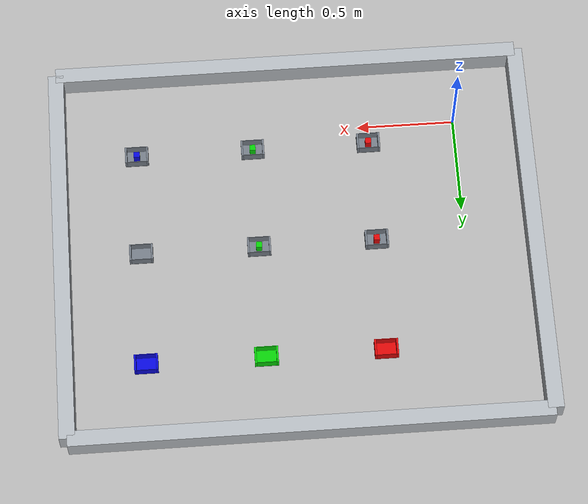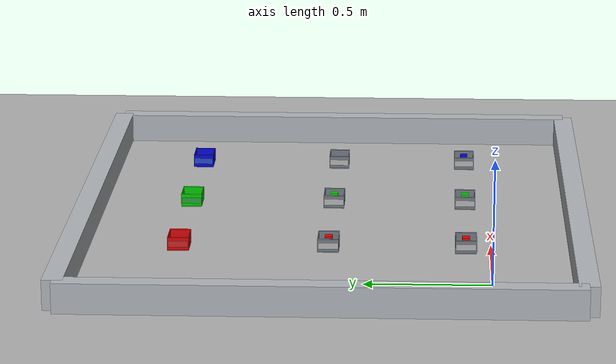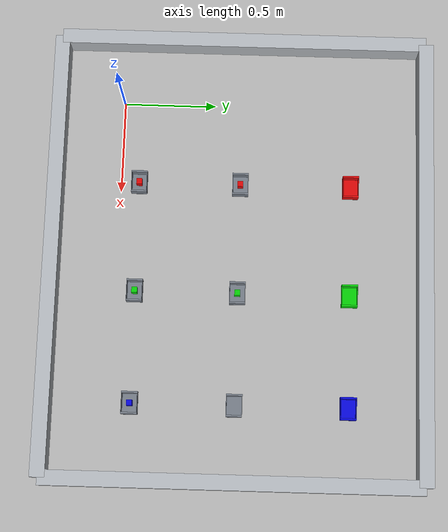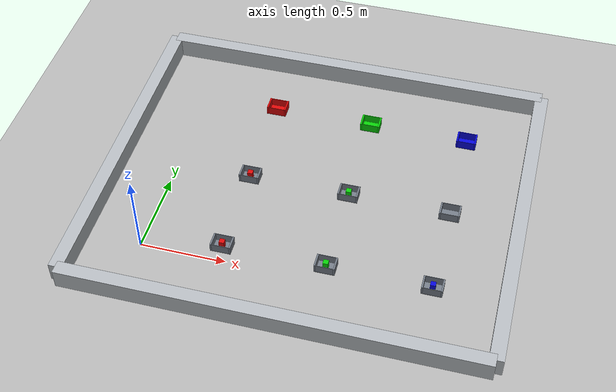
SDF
<?xml version='1.0' encoding='utf-8'?>
<sdf version="1.6">
  <world name="warehouse">
    <plugin name="state" filename="libgazebo_ros_state.so">
      <ros>
        <namespace>/gazebo</namespace>
      </ros>
      <update_rate>20</update_rate>
    </plugin>
    <gui>
      <camera name="user_camera">
        <pose>-.5 -1.8 3.3 0 .95 .95</pose>
        <view_controller>orbit</view_controller>
      </camera>
    </gui>
    <physics type="ode" name="physics">
      <max_step_size>0.001</max_step_size>
      <real_time_update_rate>1000</real_time_update_rate>
    </physics>
    <light name="sun" type="directional">
      <pose>0 0 10 0 0 0</pose>
      <diffuse>0.8 0.8 0.8 1</diffuse>
      <direction>-0.5 0.1 -0.9</direction>
    </light>
    <model name="ground">
      <static>true</static>
      <link name="ground">
        <collision name="ground">
          <geometry>
            <plane>
              <normal>0 0 1</normal>
              <size>20 20</size>
            </plane>
          </geometry>
        </collision>
        <visual name="ground">
          <geometry>
            <plane>
              <normal>0 0 1</normal>
              <size>20 20</size>
            </plane>
          </geometry>
          <material>
            <ambient>0.7 0.7 0.7 1</ambient>
          </material>
        </visual>
      </link>
    </model>
    <model name="A1">
      <static>true</static>
      <link name="frame">
        <collision name="A1_support">
          <pose>0.45 0.1 0.001900000000000001 0 0 0</pose>
          <geometry>
            <box>
              <size>0.119 0.0857 0.003799999999999998</size>
            </box>
          </geometry>
        </collision>
        <visual name="A1_support">
          <pose>0.45 0.1 0.001900000000000001 0 0 0</pose>
          <geometry>
            <box>
              <size>0.119 0.0857 0.003799999999999998</size>
            </box>
          </geometry>
          <material>
            <ambient>0.225 0.24 0.26 1</ambient>
            <diffuse>0.45 0.48 0.52 1</diffuse>
            <specular>0 0 0 1</specular>
          </material>
        </visual>
        <collision name="A1_end_-1">
          <pose>0.39525 0.1 0.028800000000000003 0 0 0</pose>
          <geometry>
            <box>
              <size>0.009499999999999995 0.0857 0.05</size>
            </box>
          </geometry>
        </collision>
        <visual name="A1_end_-1">
          <pose>0.39525 0.1 0.028800000000000003 0 0 0</pose>
          <geometry>
            <box>
              <size>0.009499999999999995 0.0857 0.05</size>
            </box>
          </geometry>
          <material>
            <ambient>0.225 0.24 0.26 1</ambient>
            <diffuse>0.45 0.48 0.52 1</diffuse>
            <specular>0 0 0 1</specular>
          </material>
        </visual>
        <collision name="A1_side_-1">
          <pose>0.45 0.058575 0.028800000000000003 0 0 0</pose>
          <geometry>
            <box>
              <size>0.1 0.0028499999999999984 0.05</size>
            </box>
          </geometry>
        </collision>
        <visual name="A1_side_-1">
          <pose>0.45 0.058575 0.028800000000000003 0 0 0</pose>
          <geometry>
            <box>
              <size>0.1 0.0028499999999999984 0.05</size>
            </box>
          </geometry>
          <material>
            <ambient>0.225 0.24 0.26 1</ambient>
            <diffuse>0.45 0.48 0.52 1</diffuse>
            <specular>0 0 0 1</specular>
          </material>
        </visual>
        <collision name="A1_end_1">
          <pose>0.50475 0.1 0.028800000000000003 0 0 0</pose>
          <geometry>
            <box>
              <size>0.009499999999999995 0.0857 0.05</size>
            </box>
          </geometry>
        </collision>
        <visual name="A1_end_1">
          <pose>0.50475 0.1 0.028800000000000003 0 0 0</pose>
          <geometry>
            <box>
              <size>0.009499999999999995 0.0857 0.05</size>
            </box>
          </geometry>
          <material>
            <ambient>0.225 0.24 0.26 1</ambient>
            <diffuse>0.45 0.48 0.52 1</diffuse>
            <specular>0 0 0 1</specular>
          </material>
        </visual>
        <collision name="A1_side_1">
          <pose>0.45 0.14142500000000002 0.028800000000000003 0 0 0</pose>
          <geometry>
            <box>
              <size>0.1 0.0028499999999999984 0.05</size>
            </box>
          </geometry>
        </collision>
        <visual name="A1_side_1">
          <pose>0.45 0.14142500000000002 0.028800000000000003 0 0 0</pose>
          <geometry>
            <box>
              <size>0.1 0.0028499999999999984 0.05</size>
            </box>
          </geometry>
          <material>
            <ambient>0.225 0.24 0.26 1</ambient>
            <diffuse>0.45 0.48 0.52 1</diffuse>
            <specular>0 0 0 1</specular>
          </material>
        </visual>
        <visual name="A1_label">
          <pose>0.3904 0.1 0.0269 1.5707963267948966 0 -1.5707963267948966</pose>
          <geometry>
            <plane>
              <normal>0 0 1</normal>
              <size>.08 .025</size>
            </plane>
          </geometry>
          <material>
            <script>
              <uri>file://media/materials/scripts</uri>
              <uri>file://media/materials/textures</uri>
              <name>Warehouse/A1</name>
            </script>
          </material>
        </visual>
      </link>
    </model>
    <model name="A2">
      <static>true</static>
      <link name="frame">
        <collision name="A2_support">
          <pose>1.05 0.1 0.001900000000000001 0 0 0</pose>
          <geometry>
            <box>
              <size>0.119 0.0857 0.003799999999999998</size>
            </box>
          </geometry>
        </collision>
        <visual name="A2_support">
          <pose>1.05 0.1 0.001900000000000001 0 0 0</pose>
          <geometry>
            <box>
              <size>0.119 0.0857 0.003799999999999998</size>
            </box>
          </geometry>
          <material>
            <ambient>0.225 0.24 0.26 1</ambient>
            <diffuse>0.45 0.48 0.52 1</diffuse>
            <specular>0 0 0 1</specular>
          </material>
        </visual>
        <collision name="A2_end_-1">
          <pose>0.9952500000000001 0.1 0.028800000000000003 0 0 0</pose>
          <geometry>
            <box>
              <size>0.009499999999999995 0.0857 0.05</size>
            </box>
          </geometry>
        </collision>
        <visual name="A2_end_-1">
          <pose>0.9952500000000001 0.1 0.028800000000000003 0 0 0</pose>
          <geometry>
            <box>
              <size>0.009499999999999995 0.0857 0.05</size>
            </box>
          </geometry>
          <material>
            <ambient>0.225 0.24 0.26 1</ambient>
            <diffuse>0.45 0.48 0.52 1</diffuse>
            <specular>0 0 0 1</specular>
          </material>
        </visual>
        <collision name="A2_side_-1">
          <pose>1.05 0.058575 0.028800000000000003 0 0 0</pose>
          <geometry>
            <box>
              <size>0.1 0.0028499999999999984 0.05</size>
            </box>
          </geometry>
        </collision>
        <visual name="A2_side_-1">
          <pose>1.05 0.058575 0.028800000000000003 0 0 0</pose>
          <geometry>
            <box>
              <size>0.1 0.0028499999999999984 0.05</size>
            </box>
          </geometry>
          <material>
            <ambient>0.225 0.24 0.26 1</ambient>
            <diffuse>0.45 0.48 0.52 1</diffuse>
            <specular>0 0 0 1</specular>
          </material>
        </visual>
        <collision name="A2_end_1">
          <pose>1.1047500000000001 0.1 0.028800000000000003 0 0 0</pose>
          <geometry>
            <box>
              <size>0.009499999999999995 0.0857 0.05</size>
            </box>
          </geometry>
        </collision>
        <visual name="A2_end_1">
          <pose>1.1047500000000001 0.1 0.028800000000000003 0 0 0</pose>
          <geometry>
            <box>
              <size>0.009499999999999995 0.0857 0.05</size>
            </box>
          </geometry>
          <material>
            <ambient>0.225 0.24 0.26 1</ambient>
            <diffuse>0.45 0.48 0.52 1</diffuse>
            <specular>0 0 0 1</specular>
          </material>
        </visual>
        <collision name="A2_side_1">
          <pose>1.05 0.14142500000000002 0.028800000000000003 0 0 0</pose>
          <geometry>
            <box>
              <size>0.1 0.0028499999999999984 0.05</size>
            </box>
          </geometry>
        </collision>
        <visual name="A2_side_1">
          <pose>1.05 0.14142500000000002 0.028800000000000003 0 0 0</pose>
          <geometry>
            <box>
              <size>0.1 0.0028499999999999984 0.05</size>
            </box>
          </geometry>
          <material>
            <ambient>0.225 0.24 0.26 1</ambient>
            <diffuse>0.45 0.48 0.52 1</diffuse>
            <specular>0 0 0 1</specular>
          </material>
        </visual>
        <visual name="A2_label">
          <pose>0.9904000000000001 0.1 0.0269 1.5707963267948966 0 -1.5707963267948966</pose>
          <geometry>
            <plane>
              <normal>0 0 1</normal>
              <size>.08 .025</size>
            </plane>
          </geometry>
          <material>
            <script>
              <uri>file://media/materials/scripts</uri>
              <uri>file://media/materials/textures</uri>
              <name>Warehouse/A2</name>
            </script>
          </material>
        </visual>
      </link>
    </model>
    <model name="A3">
      <static>true</static>
      <link name="frame">
        <collision name="A3_support">
          <pose>1.65 0.1 0.001900000000000001 0 0 0</pose>
          <geometry>
            <box>
              <size>0.119 0.0857 0.003799999999999998</size>
            </box>
          </geometry>
        </collision>
        <visual name="A3_support">
          <pose>1.65 0.1 0.001900000000000001 0 0 0</pose>
          <geometry>
            <box>
              <size>0.119 0.0857 0.003799999999999998</size>
            </box>
          </geometry>
          <material>
            <ambient>0.225 0.24 0.26 1</ambient>
            <diffuse>0.45 0.48 0.52 1</diffuse>
            <specular>0 0 0 1</specular>
          </material>
        </visual>
        <collision name="A3_end_-1">
          <pose>1.5952499999999998 0.1 0.028800000000000003 0 0 0</pose>
          <geometry>
            <box>
              <size>0.009499999999999995 0.0857 0.05</size>
            </box>
          </geometry>
        </collision>
        <visual name="A3_end_-1">
          <pose>1.5952499999999998 0.1 0.028800000000000003 0 0 0</pose>
          <geometry>
            <box>
              <size>0.009499999999999995 0.0857 0.05</size>
            </box>
          </geometry>
          <material>
            <ambient>0.225 0.24 0.26 1</ambient>
            <diffuse>0.45 0.48 0.52 1</diffuse>
            <specular>0 0 0 1</specular>
          </material>
        </visual>
        <collision name="A3_side_-1">
          <pose>1.65 0.058575 0.028800000000000003 0 0 0</pose>
          <geometry>
            <box>
              <size>0.1 0.0028499999999999984 0.05</size>
            </box>
          </geometry>
        </collision>
        <visual name="A3_side_-1">
          <pose>1.65 0.058575 0.028800000000000003 0 0 0</pose>
          <geometry>
            <box>
              <size>0.1 0.0028499999999999984 0.05</size>
            </box>
          </geometry>
          <material>
            <ambient>0.225 0.24 0.26 1</ambient>
            <diffuse>0.45 0.48 0.52 1</diffuse>
            <specular>0 0 0 1</specular>
          </material>
        </visual>
        <collision name="A3_end_1">
          <pose>1.70475 0.1 0.028800000000000003 0 0 0</pose>
          <geometry>
            <box>
              <size>0.009499999999999995 0.0857 0.05</size>
            </box>
          </geometry>
        </collision>
        <visual name="A3_end_1">
          <pose>1.70475 0.1 0.028800000000000003 0 0 0</pose>
          <geometry>
            <box>
              <size>0.009499999999999995 0.0857 0.05</size>
            </box>
          </geometry>
          <material>
            <ambient>0.225 0.24 0.26 1</ambient>
            <diffuse>0.45 0.48 0.52 1</diffuse>
            <specular>0 0 0 1</specular>
          </material>
        </visual>
        <collision name="A3_side_1">
          <pose>1.65 0.14142500000000002 0.028800000000000003 0 0 0</pose>
          <geometry>
            <box>
              <size>0.1 0.0028499999999999984 0.05</size>
            </box>
          </geometry>
        </collision>
        <visual name="A3_side_1">
          <pose>1.65 0.14142500000000002 0.028800000000000003 0 0 0</pose>
          <geometry>
            <box>
              <size>0.1 0.0028499999999999984 0.05</size>
            </box>
          </geometry>
          <material>
            <ambient>0.225 0.24 0.26 1</ambient>
            <diffuse>0.45 0.48 0.52 1</diffuse>
            <specular>0 0 0 1</specular>
          </material>
        </visual>
        <visual name="A3_label">
          <pose>1.5904 0.1 0.0269 1.5707963267948966 0 -1.5707963267948966</pose>
          <geometry>
            <plane>
              <normal>0 0 1</normal>
              <size>.08 .025</size>
            </plane>
          </geometry>
          <material>
            <script>
              <uri>file://media/materials/scripts</uri>
              <uri>file://media/materials/textures</uri>
              <name>Warehouse/A3</name>
            </script>
          </material>
        </visual>
      </link>
    </model>
    <model name="B1">
      <static>true</static>
      <link name="frame">
        <collision name="B1_support">
          <pose>0.45 0.65 0.001900000000000001 0 0 0</pose>
          <geometry>
            <box>
              <size>0.119 0.0857 0.003799999999999998</size>
            </box>
          </geometry>
        </collision>
        <visual name="B1_support">
          <pose>0.45 0.65 0.001900000000000001 0 0 0</pose>
          <geometry>
            <box>
              <size>0.119 0.0857 0.003799999999999998</size>
            </box>
          </geometry>
          <material>
            <ambient>0.225 0.24 0.26 1</ambient>
            <diffuse>0.45 0.48 0.52 1</diffuse>
            <specular>0 0 0 1</specular>
          </material>
        </visual>
        <collision name="B1_end_-1">
          <pose>0.39525 0.65 0.028800000000000003 0 0 0</pose>
          <geometry>
            <box>
              <size>0.009499999999999995 0.0857 0.05</size>
            </box>
          </geometry>
        </collision>
        <visual name="B1_end_-1">
          <pose>0.39525 0.65 0.028800000000000003 0 0 0</pose>
          <geometry>
            <box>
              <size>0.009499999999999995 0.0857 0.05</size>
            </box>
          </geometry>
          <material>
            <ambient>0.225 0.24 0.26 1</ambient>
            <diffuse>0.45 0.48 0.52 1</diffuse>
            <specular>0 0 0 1</specular>
          </material>
        </visual>
        <collision name="B1_side_-1">
          <pose>0.45 0.608575 0.028800000000000003 0 0 0</pose>
          <geometry>
            <box>
              <size>0.1 0.0028499999999999984 0.05</size>
            </box>
          </geometry>
        </collision>
        <visual name="B1_side_-1">
          <pose>0.45 0.608575 0.028800000000000003 0 0 0</pose>
          <geometry>
            <box>
              <size>0.1 0.0028499999999999984 0.05</size>
            </box>
          </geometry>
          <material>
            <ambient>0.225 0.24 0.26 1</ambient>
            <diffuse>0.45 0.48 0.52 1</diffuse>
            <specular>0 0 0 1</specular>
          </material>
        </visual>
        <collision name="B1_end_1">
          <pose>0.50475 0.65 0.028800000000000003 0 0 0</pose>
          <geometry>
            <box>
              <size>0.009499999999999995 0.0857 0.05</size>
            </box>
          </geometry>
        </collision>
        <visual name="B1_end_1">
          <pose>0.50475 0.65 0.028800000000000003 0 0 0</pose>
          <geometry>
            <box>
              <size>0.009499999999999995 0.0857 0.05</size>
            </box>
          </geometry>
          <material>
            <ambient>0.225 0.24 0.26 1</ambient>
            <diffuse>0.45 0.48 0.52 1</diffuse>
            <specular>0 0 0 1</specular>
          </material>
        </visual>
        <collision name="B1_side_1">
          <pose>0.45 0.6914250000000001 0.028800000000000003 0 0 0</pose>
          <geometry>
            <box>
              <size>0.1 0.0028499999999999984 0.05</size>
            </box>
          </geometry>
        </collision>
        <visual name="B1_side_1">
          <pose>0.45 0.6914250000000001 0.028800000000000003 0 0 0</pose>
          <geometry>
            <box>
              <size>0.1 0.0028499999999999984 0.05</size>
            </box>
          </geometry>
          <material>
            <ambient>0.225 0.24 0.26 1</ambient>
            <diffuse>0.45 0.48 0.52 1</diffuse>
            <specular>0 0 0 1</specular>
          </material>
        </visual>
        <visual name="B1_label">
          <pose>0.3904 0.65 0.0269 1.5707963267948966 0 -1.5707963267948966</pose>
          <geometry>
            <plane>
              <normal>0 0 1</normal>
              <size>.08 .025</size>
            </plane>
          </geometry>
          <material>
            <script>
              <uri>file://media/materials/scripts</uri>
              <uri>file://media/materials/textures</uri>
              <name>Warehouse/B1</name>
            </script>
          </material>
        </visual>
      </link>
    </model>
    <model name="B2">
      <static>true</static>
      <link name="frame">
        <collision name="B2_support">
          <pose>1.05 0.65 0.001900000000000001 0 0 0</pose>
          <geometry>
            <box>
              <size>0.119 0.0857 0.003799999999999998</size>
            </box>
          </geometry>
        </collision>
        <visual name="B2_support">
          <pose>1.05 0.65 0.001900000000000001 0 0 0</pose>
          <geometry>
            <box>
              <size>0.119 0.0857 0.003799999999999998</size>
            </box>
          </geometry>
          <material>
            <ambient>0.225 0.24 0.26 1</ambient>
            <diffuse>0.45 0.48 0.52 1</diffuse>
            <specular>0 0 0 1</specular>
          </material>
        </visual>
        <collision name="B2_end_-1">
          <pose>0.9952500000000001 0.65 0.028800000000000003 0 0 0</pose>
          <geometry>
            <box>
              <size>0.009499999999999995 0.0857 0.05</size>
            </box>
          </geometry>
        </collision>
        <visual name="B2_end_-1">
          <pose>0.9952500000000001 0.65 0.028800000000000003 0 0 0</pose>
          <geometry>
            <box>
              <size>0.009499999999999995 0.0857 0.05</size>
            </box>
          </geometry>
          <material>
            <ambient>0.225 0.24 0.26 1</ambient>
            <diffuse>0.45 0.48 0.52 1</diffuse>
            <specular>0 0 0 1</specular>
          </material>
        </visual>
        <collision name="B2_side_-1">
          <pose>1.05 0.608575 0.028800000000000003 0 0 0</pose>
          <geometry>
            <box>
              <size>0.1 0.0028499999999999984 0.05</size>
            </box>
          </geometry>
        </collision>
        <visual name="B2_side_-1">
          <pose>1.05 0.608575 0.028800000000000003 0 0 0</pose>
          <geometry>
            <box>
              <size>0.1 0.0028499999999999984 0.05</size>
            </box>
          </geometry>
          <material>
            <ambient>0.225 0.24 0.26 1</ambient>
            <diffuse>0.45 0.48 0.52 1</diffuse>
            <specular>0 0 0 1</specular>
          </material>
        </visual>
        <collision name="B2_end_1">
          <pose>1.1047500000000001 0.65 0.028800000000000003 0 0 0</pose>
          <geometry>
            <box>
              <size>0.009499999999999995 0.0857 0.05</size>
            </box>
          </geometry>
        </collision>
        <visual name="B2_end_1">
          <pose>1.1047500000000001 0.65 0.028800000000000003 0 0 0</pose>
          <geometry>
            <box>
              <size>0.009499999999999995 0.0857 0.05</size>
            </box>
          </geometry>
          <material>
            <ambient>0.225 0.24 0.26 1</ambient>
            <diffuse>0.45 0.48 0.52 1</diffuse>
            <specular>0 0 0 1</specular>
          </material>
        </visual>
        <collision name="B2_side_1">
          <pose>1.05 0.6914250000000001 0.028800000000000003 0 0 0</pose>
          <geometry>
            <box>
              <size>0.1 0.0028499999999999984 0.05</size>
            </box>
          </geometry>
        </collision>
        <visual name="B2_side_1">
          <pose>1.05 0.6914250000000001 0.028800000000000003 0 0 0</pose>
          <geometry>
            <box>
              <size>0.1 0.0028499999999999984 0.05</size>
            </box>
          </geometry>
          <material>
            <ambient>0.225 0.24 0.26 1</ambient>
            <diffuse>0.45 0.48 0.52 1</diffuse>
            <specular>0 0 0 1</specular>
          </material>
        </visual>
        <visual name="B2_label">
          <pose>0.9904000000000001 0.65 0.0269 1.5707963267948966 0 -1.5707963267948966</pose>
          <geometry>
            <plane>
              <normal>0 0 1</normal>
              <size>.08 .025</size>
            </plane>
          </geometry>
          <material>
            <script>
              <uri>file://media/materials/scripts</uri>
              <uri>file://media/materials/textures</uri>
              <name>Warehouse/B2</name>
            </script>
          </material>
        </visual>
      </link>
    </model>
    <model name="B3">
      <static>true</static>
      <link name="frame">
        <collision name="B3_support">
          <pose>1.65 0.65 0.001900000000000001 0 0 0</pose>
          <geometry>
            <box>
              <size>0.119 0.0857 0.003799999999999998</size>
            </box>
          </geometry>
        </collision>
        <visual name="B3_support">
          <pose>1.65 0.65 0.001900000000000001 0 0 0</pose>
          <geometry>
            <box>
              <size>0.119 0.0857 0.003799999999999998</size>
            </box>
          </geometry>
          <material>
            <ambient>0.225 0.24 0.26 1</ambient>
            <diffuse>0.45 0.48 0.52 1</diffuse>
            <specular>0 0 0 1</specular>
          </material>
        </visual>
        <collision name="B3_end_-1">
          <pose>1.5952499999999998 0.65 0.028800000000000003 0 0 0</pose>
          <geometry>
            <box>
              <size>0.009499999999999995 0.0857 0.05</size>
            </box>
          </geometry>
        </collision>
        <visual name="B3_end_-1">
          <pose>1.5952499999999998 0.65 0.028800000000000003 0 0 0</pose>
          <geometry>
            <box>
              <size>0.009499999999999995 0.0857 0.05</size>
            </box>
          </geometry>
          <material>
            <ambient>0.225 0.24 0.26 1</ambient>
            <diffuse>0.45 0.48 0.52 1</diffuse>
            <specular>0 0 0 1</specular>
          </material>
        </visual>
        <collision name="B3_side_-1">
          <pose>1.65 0.608575 0.028800000000000003 0 0 0</pose>
          <geometry>
            <box>
              <size>0.1 0.0028499999999999984 0.05</size>
            </box>
          </geometry>
        </collision>
        <visual name="B3_side_-1">
          <pose>1.65 0.608575 0.028800000000000003 0 0 0</pose>
          <geometry>
            <box>
              <size>0.1 0.0028499999999999984 0.05</size>
            </box>
          </geometry>
          <material>
            <ambient>0.225 0.24 0.26 1</ambient>
            <diffuse>0.45 0.48 0.52 1</diffuse>
            <specular>0 0 0 1</specular>
          </material>
        </visual>
        <collision name="B3_end_1">
          <pose>1.70475 0.65 0.028800000000000003 0 0 0</pose>
          <geometry>
            <box>
              <size>0.009499999999999995 0.0857 0.05</size>
            </box>
          </geometry>
        </collision>
        <visual name="B3_end_1">
          <pose>1.70475 0.65 0.028800000000000003 0 0 0</pose>
          <geometry>
            <box>
              <size>0.009499999999999995 0.0857 0.05</size>
            </box>
          </geometry>
          <material>
            <ambient>0.225 0.24 0.26 1</ambient>
            <diffuse>0.45 0.48 0.52 1</diffuse>
            <specular>0 0 0 1</specular>
          </material>
        </visual>
        <collision name="B3_side_1">
          <pose>1.65 0.6914250000000001 0.028800000000000003 0 0 0</pose>
          <geometry>
            <box>
              <size>0.1 0.0028499999999999984 0.05</size>
            </box>
          </geometry>
        </collision>
        <visual name="B3_side_1">
          <pose>1.65 0.6914250000000001 0.028800000000000003 0 0 0</pose>
          <geometry>
            <box>
              <size>0.1 0.0028499999999999984 0.05</size>
            </box>
          </geometry>
          <material>
            <ambient>0.225 0.24 0.26 1</ambient>
            <diffuse>0.45 0.48 0.52 1</diffuse>
            <specular>0 0 0 1</specular>
          </material>
        </visual>
        <visual name="B3_label">
          <pose>1.5904 0.65 0.0269 1.5707963267948966 0 -1.5707963267948966</pose>
          <geometry>
            <plane>
              <normal>0 0 1</normal>
              <size>.08 .025</size>
            </plane>
          </geometry>
          <material>
            <script>
              <uri>file://media/materials/scripts</uri>
              <uri>file://media/materials/textures</uri>
              <name>Warehouse/B3</name>
            </script>
          </material>
        </visual>
      </link>
    </model>
    <model name="OUT_RED">
      <static>true</static>
      <link name="frame">
        <collision name="OUT_RED_support">
          <pose>0.45 1.25 0.001900000000000001 0 0 0</pose>
          <geometry>
            <box>
              <size>0.119 0.0857 0.003799999999999998</size>
            </box>
          </geometry>
        </collision>
        <visual name="OUT_RED_support">
          <pose>0.45 1.25 0.001900000000000001 0 0 0</pose>
          <geometry>
            <box>
              <size>0.119 0.0857 0.003799999999999998</size>
            </box>
          </geometry>
          <material>
            <ambient>0.425 0.0125 0.0125 1</ambient>
            <diffuse>0.85 0.025 0.025 1</diffuse>
            <specular>0 0 0 1</specular>
          </material>
        </visual>
        <collision name="OUT_RED_end_-1">
          <pose>0.39525 1.25 0.028800000000000003 0 0 0</pose>
          <geometry>
            <box>
              <size>0.009499999999999995 0.0857 0.05</size>
            </box>
          </geometry>
        </collision>
        <visual name="OUT_RED_end_-1">
          <pose>0.39525 1.25 0.028800000000000003 0 0 0</pose>
          <geometry>
            <box>
              <size>0.009499999999999995 0.0857 0.05</size>
            </box>
          </geometry>
          <material>
            <ambient>0.425 0.0125 0.0125 1</ambient>
            <diffuse>0.85 0.025 0.025 1</diffuse>
            <specular>0 0 0 1</specular>
          </material>
        </visual>
        <collision name="OUT_RED_side_-1">
          <pose>0.45 1.208575 0.028800000000000003 0 0 0</pose>
          <geometry>
            <box>
              <size>0.1 0.0028499999999999984 0.05</size>
            </box>
          </geometry>
        </collision>
        <visual name="OUT_RED_side_-1">
          <pose>0.45 1.208575 0.028800000000000003 0 0 0</pose>
          <geometry>
            <box>
              <size>0.1 0.0028499999999999984 0.05</size>
            </box>
          </geometry>
          <material>
            <ambient>0.425 0.0125 0.0125 1</ambient>
            <diffuse>0.85 0.025 0.025 1</diffuse>
            <specular>0 0 0 1</specular>
          </material>
        </visual>
        <collision name="OUT_RED_end_1">
          <pose>0.50475 1.25 0.028800000000000003 0 0 0</pose>
          <geometry>
            <box>
              <size>0.009499999999999995 0.0857 0.05</size>
            </box>
          </geometry>
        </collision>
        <visual name="OUT_RED_end_1">
          <pose>0.50475 1.25 0.028800000000000003 0 0 0</pose>
          <geometry>
            <box>
              <size>0.009499999999999995 0.0857 0.05</size>
            </box>
          </geometry>
          <material>
            <ambient>0.425 0.0125 0.0125 1</ambient>
            <diffuse>0.85 0.025 0.025 1</diffuse>
            <specular>0 0 0 1</specular>
          </material>
        </visual>
        <collision name="OUT_RED_side_1">
          <pose>0.45 1.291425 0.028800000000000003 0 0 0</pose>
          <geometry>
            <box>
              <size>0.1 0.0028499999999999984 0.05</size>
            </box>
          </geometry>
        </collision>
        <visual name="OUT_RED_side_1">
          <pose>0.45 1.291425 0.028800000000000003 0 0 0</pose>
          <geometry>
            <box>
              <size>0.1 0.0028499999999999984 0.05</size>
            </box>
          </geometry>
          <material>
            <ambient>0.425 0.0125 0.0125 1</ambient>
            <diffuse>0.85 0.025 0.025 1</diffuse>
            <specular>0 0 0 1</specular>
          </material>
        </visual>
        <visual name="OUT_RED_label">
          <pose>0.3904 1.25 0.0269 1.5707963267948966 0 -1.5707963267948966</pose>
          <geometry>
            <plane>
              <normal>0 0 1</normal>
              <size>.08 .025</size>
            </plane>
          </geometry>
          <material>
            <script>
              <uri>file://media/materials/scripts</uri>
              <uri>file://media/materials/textures</uri>
              <name>Warehouse/OUT_RED</name>
            </script>
          </material>
        </visual>
      </link>
    </model>
    <model name="OUT_GREEN">
      <static>true</static>
      <link name="frame">
        <collision name="OUT_GREEN_support">
          <pose>1.05 1.25 0.001900000000000001 0 0 0</pose>
          <geometry>
            <box>
              <size>0.119 0.0857 0.003799999999999998</size>
            </box>
          </geometry>
        </collision>
        <visual name="OUT_GREEN_support">
          <pose>1.05 1.25 0.001900000000000001 0 0 0</pose>
          <geometry>
            <box>
              <size>0.119 0.0857 0.003799999999999998</size>
            </box>
          </geometry>
          <material>
            <ambient>0.0125 0.4 0.0125 1</ambient>
            <diffuse>0.025 0.8 0.025 1</diffuse>
            <specular>0 0 0 1</specular>
          </material>
        </visual>
        <collision name="OUT_GREEN_end_-1">
          <pose>0.9952500000000001 1.25 0.028800000000000003 0 0 0</pose>
          <geometry>
            <box>
              <size>0.009499999999999995 0.0857 0.05</size>
            </box>
          </geometry>
        </collision>
        <visual name="OUT_GREEN_end_-1">
          <pose>0.9952500000000001 1.25 0.028800000000000003 0 0 0</pose>
          <geometry>
            <box>
              <size>0.009499999999999995 0.0857 0.05</size>
            </box>
          </geometry>
          <material>
            <ambient>0.0125 0.4 0.0125 1</ambient>
            <diffuse>0.025 0.8 0.025 1</diffuse>
            <specular>0 0 0 1</specular>
          </material>
        </visual>
        <collision name="OUT_GREEN_side_-1">
          <pose>1.05 1.208575 0.028800000000000003 0 0 0</pose>
          <geometry>
            <box>
              <size>0.1 0.0028499999999999984 0.05</size>
            </box>
          </geometry>
        </collision>
        <visual name="OUT_GREEN_side_-1">
          <pose>1.05 1.208575 0.028800000000000003 0 0 0</pose>
          <geometry>
            <box>
              <size>0.1 0.0028499999999999984 0.05</size>
            </box>
          </geometry>
          <material>
            <ambient>0.0125 0.4 0.0125 1</ambient>
            <diffuse>0.025 0.8 0.025 1</diffuse>
            <specular>0 0 0 1</specular>
          </material>
        </visual>
        <collision name="OUT_GREEN_end_1">
          <pose>1.1047500000000001 1.25 0.028800000000000003 0 0 0</pose>
          <geometry>
            <box>
              <size>0.009499999999999995 0.0857 0.05</size>
            </box>
          </geometry>
        </collision>
        <visual name="OUT_GREEN_end_1">
          <pose>1.1047500000000001 1.25 0.028800000000000003 0 0 0</pose>
          <geometry>
            <box>
              <size>0.009499999999999995 0.0857 0.05</size>
            </box>
          </geometry>
          <material>
            <ambient>0.0125 0.4 0.0125 1</ambient>
            <diffuse>0.025 0.8 0.025 1</diffuse>
            <specular>0 0 0 1</specular>
          </material>
        </visual>
        <collision name="OUT_GREEN_side_1">
          <pose>1.05 1.291425 0.028800000000000003 0 0 0</pose>
          <geometry>
            <box>
              <size>0.1 0.0028499999999999984 0.05</size>
            </box>
          </geometry>
        </collision>
        <visual name="OUT_GREEN_side_1">
          <pose>1.05 1.291425 0.028800000000000003 0 0 0</pose>
          <geometry>
            <box>
              <size>0.1 0.0028499999999999984 0.05</size>
            </box>
          </geometry>
          <material>
            <ambient>0.0125 0.4 0.0125 1</ambient>
            <diffuse>0.025 0.8 0.025 1</diffuse>
            <specular>0 0 0 1</specular>
          </material>
        </visual>
        <visual name="OUT_GREEN_label">
          <pose>0.9904000000000001 1.25 0.0269 1.5707963267948966 0 -1.5707963267948966</pose>
          <geometry>
            <plane>
              <normal>0 0 1</normal>
              <size>.08 .025</size>
            </plane>
          </geometry>
          <material>
            <script>
              <uri>file://media/materials/scripts</uri>
              <uri>file://media/materials/textures</uri>
              <name>Warehouse/OUT_GREEN</name>
            </script>
          </material>
        </visual>
      </link>
    </model>
    <model name="OUT_BLUE">
      <static>true</static>
      <link name="frame">
        <collision name="OUT_BLUE_support">
          <pose>1.65 1.25 0.001900000000000001 0 0 0</pose>
          <geometry>
            <box>
              <size>0.119 0.0857 0.003799999999999998</size>
            </box>
          </geometry>
        </collision>
        <visual name="OUT_BLUE_support">
          <pose>1.65 1.25 0.001900000000000001 0 0 0</pose>
          <geometry>
            <box>
              <size>0.119 0.0857 0.003799999999999998</size>
            </box>
          </geometry>
          <material>
            <ambient>0.0125 0.0125 0.425 1</ambient>
            <diffuse>0.025 0.025 0.85 1</diffuse>
            <specular>0 0 0 1</specular>
          </material>
        </visual>
        <collision name="OUT_BLUE_end_-1">
          <pose>1.5952499999999998 1.25 0.028800000000000003 0 0 0</pose>
          <geometry>
            <box>
              <size>0.009499999999999995 0.0857 0.05</size>
            </box>
          </geometry>
        </collision>
        <visual name="OUT_BLUE_end_-1">
          <pose>1.5952499999999998 1.25 0.028800000000000003 0 0 0</pose>
          <geometry>
            <box>
              <size>0.009499999999999995 0.0857 0.05</size>
            </box>
          </geometry>
          <material>
            <ambient>0.0125 0.0125 0.425 1</ambient>
            <diffuse>0.025 0.025 0.85 1</diffuse>
            <specular>0 0 0 1</specular>
          </material>
        </visual>
        <collision name="OUT_BLUE_side_-1">
          <pose>1.65 1.208575 0.028800000000000003 0 0 0</pose>
          <geometry>
            <box>
              <size>0.1 0.0028499999999999984 0.05</size>
            </box>
          </geometry>
        </collision>
        <visual name="OUT_BLUE_side_-1">
          <pose>1.65 1.208575 0.028800000000000003 0 0 0</pose>
          <geometry>
            <box>
              <size>0.1 0.0028499999999999984 0.05</size>
            </box>
          </geometry>
          <material>
            <ambient>0.0125 0.0125 0.425 1</ambient>
            <diffuse>0.025 0.025 0.85 1</diffuse>
            <specular>0 0 0 1</specular>
          </material>
        </visual>
        <collision name="OUT_BLUE_end_1">
          <pose>1.70475 1.25 0.028800000000000003 0 0 0</pose>
          <geometry>
            <box>
              <size>0.009499999999999995 0.0857 0.05</size>
            </box>
          </geometry>
        </collision>
        <visual name="OUT_BLUE_end_1">
          <pose>1.70475 1.25 0.028800000000000003 0 0 0</pose>
          <geometry>
            <box>
              <size>0.009499999999999995 0.0857 0.05</size>
            </box>
          </geometry>
          <material>
            <ambient>0.0125 0.0125 0.425 1</ambient>
            <diffuse>0.025 0.025 0.85 1</diffuse>
            <specular>0 0 0 1</specular>
          </material>
        </visual>
        <collision name="OUT_BLUE_side_1">
          <pose>1.65 1.291425 0.028800000000000003 0 0 0</pose>
          <geometry>
            <box>
              <size>0.1 0.0028499999999999984 0.05</size>
            </box>
          </geometry>
        </collision>
        <visual name="OUT_BLUE_side_1">
          <pose>1.65 1.291425 0.028800000000000003 0 0 0</pose>
          <geometry>
            <box>
              <size>0.1 0.0028499999999999984 0.05</size>
            </box>
          </geometry>
          <material>
            <ambient>0.0125 0.0125 0.425 1</ambient>
            <diffuse>0.025 0.025 0.85 1</diffuse>
            <specular>0 0 0 1</specular>
          </material>
        </visual>
        <visual name="OUT_BLUE_label">
          <pose>1.5904 1.25 0.0269 1.5707963267948966 0 -1.5707963267948966</pose>
          <geometry>
            <plane>
              <normal>0 0 1</normal>
              <size>.08 .025</size>
            </plane>
          </geometry>
          <material>
            <script>
              <uri>file://media/materials/scripts</uri>
              <uri>file://media/materials/textures</uri>
              <name>Warehouse/OUT_BLUE</name>
            </script>
          </material>
        </visual>
      </link>
    </model>
    <model name="wall_west">
      <static>true</static>
      <link name="frame">
        <collision name="wall_west">
          <pose>-0.35 0.6499999999999999 0.06 0 0 0</pose>
          <geometry>
            <box>
              <size>0.08 2.0 0.12</size>
            </box>
          </geometry>
        </collision>
        <visual name="wall_west">
          <pose>-0.35 0.6499999999999999 0.06 0 0 0</pose>
          <geometry>
            <box>
              <size>0.08 2.0 0.12</size>
            </box>
          </geometry>
          <material>
            <ambient>0.35 0.36 0.37 1</ambient>
            <diffuse>0.7 0.72 0.74 1</diffuse>
            <specular>0 0 0 1</specular>
          </material>
        </visual>
      </link>
    </model>
    <model name="wall_east">
      <static>true</static>
      <link name="frame">
        <collision name="wall_east">
          <pose>2.05 0.6499999999999999 0.06 0 0 0</pose>
          <geometry>
            <box>
              <size>0.08 2.0 0.12</size>
            </box>
          </geometry>
        </collision>
        <visual name="wall_east">
          <pose>2.05 0.6499999999999999 0.06 0 0 0</pose>
          <geometry>
            <box>
              <size>0.08 2.0 0.12</size>
            </box>
          </geometry>
          <material>
            <ambient>0.35 0.36 0.37 1</ambient>
            <diffuse>0.7 0.72 0.74 1</diffuse>
            <specular>0 0 0 1</specular>
          </material>
        </visual>
      </link>
    </model>
    <model name="wall_south">
      <static>true</static>
      <link name="frame">
        <collision name="wall_south">
          <pose>0.8499999999999999 -0.35 0.06 0 0 0</pose>
          <geometry>
            <box>
              <size>2.4 0.08 0.12</size>
            </box>
          </geometry>
        </collision>
        <visual name="wall_south">
          <pose>0.8499999999999999 -0.35 0.06 0 0 0</pose>
          <geometry>
            <box>
              <size>2.4 0.08 0.12</size>
            </box>
          </geometry>
          <material>
            <ambient>0.35 0.36 0.37 1</ambient>
            <diffuse>0.7 0.72 0.74 1</diffuse>
            <specular>0 0 0 1</specular>
          </material>
        </visual>
      </link>
    </model>
    <model name="wall_north">
      <static>true</static>
      <link name="frame">
        <collision name="wall_north">
          <pose>0.8499999999999999 1.65 0.06 0 0 0</pose>
          <geometry>
            <box>
              <size>2.4 0.08 0.12</size>
            </box>
          </geometry>
        </collision>
        <visual name="wall_north">
          <pose>0.8499999999999999 1.65 0.06 0 0 0</pose>
          <geometry>
            <box>
              <size>2.4 0.08 0.12</size>
            </box>
          </geometry>
          <material>
            <ambient>0.35 0.36 0.37 1</ambient>
            <diffuse>0.7 0.72 0.74 1</diffuse>
            <specular>0 0 0 1</specular>
          </material>
        </visual>
      </link>
    </model>
    <model name="cargo_A1_red">
      <pose>0.45 0.1 0.028300000000000002 0 0 0</pose>
      <link name="box">
        <inertial>
          <mass>0.04</mass>
          <inertia>
            <ixx>1.1003333333333335e-05</ixx>
            <iyy>1.1003333333333335e-05</iyy>
            <izz>6e-06</izz>
            <ixy>0</ixy>
            <ixz>0</ixz>
            <iyz>0</iyz>
          </inertia>
        </inertial>
        <collision name="box">
          <geometry>
            <box>
              <size>0.03 0.03 0.049</size>
            </box>
          </geometry>
          <surface>
            <friction>
              <ode>
                <mu>0.65</mu>
                <mu2>0.65</mu2>
              </ode>
            </friction>
            <bounce>
              <restitution_coefficient>0</restitution_coefficient>
            </bounce>
          </surface>
        </collision>
        <visual name="box">
          <geometry>
            <box>
              <size>0.03 0.03 0.049</size>
            </box>
          </geometry>
          <material>
            <ambient>0.425 0.0125 0.0125 1</ambient>
            <diffuse>0.85 0.025 0.025 1</diffuse>
            <specular>0 0 0 1</specular>
          </material>
        </visual>
      </link>
    </model>
    <model name="cargo_A2_green">
      <pose>1.05 0.1 0.028300000000000002 0 0 0</pose>
      <link name="box">
        <inertial>
          <mass>0.04</mass>
          <inertia>
            <ixx>1.1003333333333335e-05</ixx>
            <iyy>1.1003333333333335e-05</iyy>
            <izz>6e-06</izz>
            <ixy>0</ixy>
            <ixz>0</ixz>
            <iyz>0</iyz>
          </inertia>
        </inertial>
        <collision name="box">
          <geometry>
            <box>
              <size>0.03 0.03 0.049</size>
            </box>
          </geometry>
          <surface>
            <friction>
              <ode>
                <mu>0.65</mu>
                <mu2>0.65</mu2>
              </ode>
            </friction>
            <bounce>
              <restitution_coefficient>0</restitution_coefficient>
            </bounce>
          </surface>
        </collision>
        <visual name="box">
          <geometry>
            <box>
              <size>0.03 0.03 0.049</size>
            </box>
          </geometry>
          <material>
            <ambient>0.0125 0.4 0.0125 1</ambient>
            <diffuse>0.025 0.8 0.025 1</diffuse>
            <specular>0 0 0 1</specular>
          </material>
        </visual>
      </link>
    </model>
    <model name="cargo_A3_blue">
      <pose>1.65 0.1 0.028300000000000002 0 0 0</pose>
      <link name="box">
        <inertial>
          <mass>0.04</mass>
          <inertia>
            <ixx>1.1003333333333335e-05</ixx>
            <iyy>1.1003333333333335e-05</iyy>
            <izz>6e-06</izz>
            <ixy>0</ixy>
            <ixz>0</ixz>
            <iyz>0</iyz>
          </inertia>
        </inertial>
        <collision name="box">
          <geometry>
            <box>
              <size>0.03 0.03 0.049</size>
            </box>
          </geometry>
          <surface>
            <friction>
              <ode>
                <mu>0.65</mu>
                <mu2>0.65</mu2>
              </ode>
            </friction>
            <bounce>
              <restitution_coefficient>0</restitution_coefficient>
            </bounce>
          </surface>
        </collision>
        <visual name="box">
          <geometry>
            <box>
              <size>0.03 0.03 0.049</size>
            </box>
          </geometry>
          <material>
            <ambient>0.0125 0.0125 0.425 1</ambient>
            <diffuse>0.025 0.025 0.85 1</diffuse>
            <specular>0 0 0 1</specular>
          </material>
        </visual>
      </link>
    </model>
    <model name="cargo_B1_red">
      <pose>0.45 0.65 0.028300000000000002 0 0 0</pose>
      <link name="box">
        <inertial>
          <mass>0.04</mass>
          <inertia>
            <ixx>1.1003333333333335e-05</ixx>
            <iyy>1.1003333333333335e-05</iyy>
            <izz>6e-06</izz>
            <ixy>0</ixy>
            <ixz>0</ixz>
            <iyz>0</iyz>
          </inertia>
        </inertial>
        <collision name="box">
          <geometry>
            <box>
              <size>0.03 0.03 0.049</size>
            </box>
          </geometry>
          <surface>
            <friction>
              <ode>
                <mu>0.65</mu>
                <mu2>0.65</mu2>
              </ode>
            </friction>
            <bounce>
              <restitution_coefficient>0</restitution_coefficient>
            </bounce>
          </surface>
        </collision>
        <visual name="box">
          <geometry>
            <box>
              <size>0.03 0.03 0.049</size>
            </box>
          </geometry>
          <material>
            <ambient>0.425 0.0125 0.0125 1</ambient>
            <diffuse>0.85 0.025 0.025 1</diffuse>
            <specular>0 0 0 1</specular>
          </material>
        </visual>
      </link>
    </model>
    <model name="cargo_B2_green">
      <pose>1.05 0.65 0.028300000000000002 0 0 0</pose>
      <link name="box">
        <inertial>
          <mass>0.04</mass>
          <inertia>
            <ixx>1.1003333333333335e-05</ixx>
            <iyy>1.1003333333333335e-05</iyy>
            <izz>6e-06</izz>
            <ixy>0</ixy>
            <ixz>0</ixz>
            <iyz>0</iyz>
          </inertia>
        </inertial>
        <collision name="box">
          <geometry>
            <box>
              <size>0.03 0.03 0.049</size>
            </box>
          </geometry>
          <surface>
            <friction>
              <ode>
                <mu>0.65</mu>
                <mu2>0.65</mu2>
              </ode>
            </friction>
            <bounce>
              <restitution_coefficient>0</restitution_coefficient>
            </bounce>
          </surface>
        </collision>
        <visual name="box">
          <geometry>
            <box>
              <size>0.03 0.03 0.049</size>
            </box>
          </geometry>
          <material>
            <ambient>0.0125 0.4 0.0125 1</ambient>
            <diffuse>0.025 0.8 0.025 1</diffuse>
            <specular>0 0 0 1</specular>
          </material>
        </visual>
      </link>
    </model>
  </world>
</sdf>
